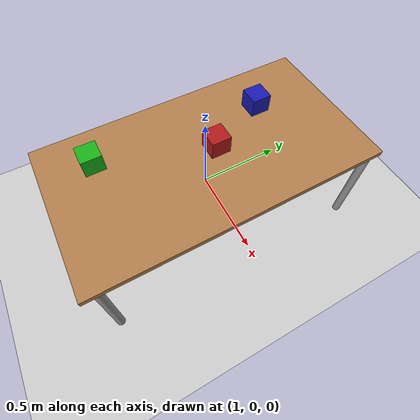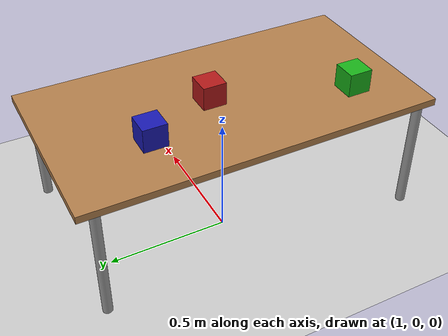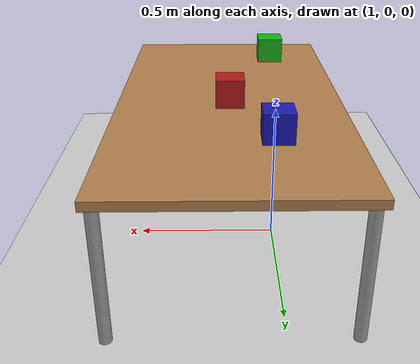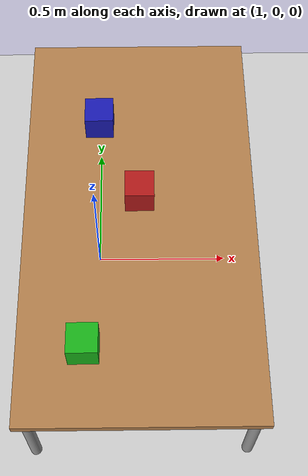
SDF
<sdf version='1.6'>
  <world name='default'>
    <light name='sun' type='directional'>
      <cast_shadows>1</cast_shadows>
      <pose frame=''>0 0 10 0 -0 0</pose>
      <diffuse>0.8 0.8 0.8 1</diffuse>
      <specular>0.2 0.2 0.2 1</specular>
      <attenuation>
        <range>1000</range>
        <constant>0.9</constant>
        <linear>0.01</linear>
        <quadratic>0.001</quadratic>
      </attenuation>
      <direction>-0.5 0.1 -0.9</direction>
    </light>
    <model name='ground_plane'>
      <static>1</static>
      <link name='link'>
        <collision name='collision'>
          <geometry>
            <plane>
              <normal>0 0 1</normal>
              <size>100 100</size>
            </plane>
          </geometry>
          <surface>
            <friction>
              <ode>
                <mu>100</mu>
                <mu2>50</mu2>
              </ode>
              <torsional>
                <ode/>
              </torsional>
            </friction>
            <contact>
              <ode/>
            </contact>
            <bounce/>
          </surface>
          <max_contacts>10</max_contacts>
        </collision>
        <visual name='visual'>
          <cast_shadows>0</cast_shadows>
          <geometry>
            <plane>
              <normal>0 0 1</normal>
              <size>100 100</size>
            </plane>
          </geometry>
          <material>
            <script>
              <uri>file://media/materials/scripts/gazebo.material</uri>
              <name>Gazebo/Grey</name>
            </script>
          </material>
        </visual>
        <self_collide>0</self_collide>
        <kinematic>0</kinematic>
      </link>
    </model>
    <gravity>0 0 -9.8</gravity>
    <magnetic_field>6e-06 2.3e-05 -4.2e-05</magnetic_field>
    <atmosphere type='adiabatic'/>
    <physics name='default_physics' default='0' type='ode'>
      <max_step_size>0.001</max_step_size>
      <real_time_factor>1</real_time_factor>
      <real_time_update_rate>1000</real_time_update_rate>
    </physics>
    <scene>
      <ambient>0.4 0.4 0.4 1</ambient>
      <background>0.7 0.7 0.7 1</background>
      <shadows>1</shadows>
    </scene>
    <spherical_coordinates>
      <surface_model>EARTH_WGS84</surface_model>
      <latitude_deg>0</latitude_deg>
      <longitude_deg>0</longitude_deg>
      <elevation>0</elevation>
      <heading_deg>0</heading_deg>
    </spherical_coordinates>
    <model name='low_table_rotate'>
      <link name='link'>
        <pose frame=''>0 0 0 0 0 -1.5708</pose>
        <inertial>
          <mass>1</mass>
          <pose frame=''>0 0 0 0 -0 0</pose>
          <inertia>
            <ixx>1</ixx>
            <ixy>0</ixy>
            <ixz>0</ixz>
            <iyy>1</iyy>
            <iyz>0</iyz>
            <izz>1</izz>
          </inertia>
        </inertial>
        <self_collide>0</self_collide>
        <kinematic>0</kinematic>
        <gravity>1</gravity>
        <visual name='visual1'>
          <pose frame=''>0 0 0.5 0 -0 0</pose>
          <geometry>
            <box>
              <size>1.5 0.8 0.03</size>
            </box>
          </geometry>
          <material>
            <script>
              <uri>file://media/materials/scripts/gazebo.material</uri>
              <name>Gazebo/Wood</name>
            </script>
            <shader type='pixel'>
              <normal_map>__default__</normal_map>
            </shader>
            <ambient>1 1 1 1</ambient>
            <diffuse>1 1 1 1</diffuse>
            <specular>0.2 0.2 0.2 1</specular>
            <emissive>0 0 0 1</emissive>
          </material>
          <transparency>0</transparency>
          <cast_shadows>1</cast_shadows>
        </visual>
        <visual name='front_right_leg'>
          <pose frame=''>0.68 -0.38 0.25 0 -0 0</pose>
          <geometry>
            <cylinder>
              <radius>0.02</radius>
              <length>0.5</length>
            </cylinder>
          </geometry>
          <material>
            <script>
              <uri>file://media/materials/scripts/gazebo.material</uri>
              <name>Gazebo/Grey</name>
            </script>
            <shader type='pixel'>
              <normal_map>__default__</normal_map>
            </shader>
            <ambient>0.3 0.3 0.3 1</ambient>
            <diffuse>0.7 0.7 0.7 1</diffuse>
            <specular>0.01 0.01 0.01 1</specular>
            <emissive>0 0 0 1</emissive>
          </material>
          <transparency>0</transparency>
          <cast_shadows>1</cast_shadows>
        </visual>
        <visual name='front_left_leg'>
          <pose frame=''>0.68 0.38 0.25 0 -0 0</pose>
          <geometry>
            <cylinder>
              <radius>0.02</radius>
              <length>0.5</length>
            </cylinder>
          </geometry>
          <material>
            <script>
              <uri>file://media/materials/scripts/gazebo.material</uri>
              <name>Gazebo/Grey</name>
            </script>
            <shader type='pixel'>
              <normal_map>__default__</normal_map>
            </shader>
            <ambient>0.3 0.3 0.3 1</ambient>
            <diffuse>0.7 0.7 0.7 1</diffuse>
            <specular>0.01 0.01 0.01 1</specular>
            <emissive>0 0 0 1</emissive>
          </material>
          <transparency>0</transparency>
          <cast_shadows>1</cast_shadows>
        </visual>
        <visual name='back_right_leg'>
          <pose frame=''>-0.68 -0.38 0.25 0 -0 0</pose>
          <geometry>
            <cylinder>
              <radius>0.02</radius>
              <length>0.5</length>
            </cylinder>
          </geometry>
          <material>
            <script>
              <uri>file://media/materials/scripts/gazebo.material</uri>
              <name>Gazebo/Grey</name>
            </script>
            <shader type='pixel'>
              <normal_map>__default__</normal_map>
            </shader>
            <ambient>0.3 0.3 0.3 1</ambient>
            <diffuse>0.7 0.7 0.7 1</diffuse>
            <specular>0.01 0.01 0.01 1</specular>
            <emissive>0 0 0 1</emissive>
          </material>
          <transparency>0</transparency>
          <cast_shadows>1</cast_shadows>
        </visual>
        <visual name='back_left_leg'>
          <pose frame=''>-0.68 0.38 0.25 0 -0 0</pose>
          <geometry>
            <cylinder>
              <radius>0.02</radius>
              <length>0.5</length>
            </cylinder>
          </geometry>
          <material>
            <script>
              <uri>file://media/materials/scripts/gazebo.material</uri>
              <name>Gazebo/Grey</name>
            </script>
            <shader type='pixel'>
              <normal_map>__default__</normal_map>
            </shader>
            <ambient>0.3 0.3 0.3 1</ambient>
            <diffuse>0.7 0.7 0.7 1</diffuse>
            <specular>0.01 0.01 0.01 1</specular>
            <emissive>0 0 0 1</emissive>
          </material>
          <transparency>0</transparency>
          <cast_shadows>1</cast_shadows>
        </visual>
        <collision name='surface'>
          <laser_retro>0</laser_retro>
          <max_contacts>10</max_contacts>
          <pose frame=''>0 0 0.5 0 -0 0</pose>
          <geometry>
            <box>
              <size>1.5 0.8 0.03</size>
            </box>
          </geometry>
          <surface>
            <friction>
              <ode>
                <mu>0.6</mu>
                <mu2>0.6</mu2>
                <fdir1>0 0 0</fdir1>
                <slip1>0</slip1>
                <slip2>0</slip2>
              </ode>
              <torsional>
                <coefficient>1</coefficient>
                <patch_radius>0</patch_radius>
                <surface_radius>0</surface_radius>
                <use_patch_radius>1</use_patch_radius>
                <ode>
                  <slip>0</slip>
                </ode>
              </torsional>
            </friction>
            <bounce>
              <restitution_coefficient>0</restitution_coefficient>
              <threshold>1e+06</threshold>
            </bounce>
            <contact>
              <collide_without_contact>0</collide_without_contact>
              <collide_without_contact_bitmask>1</collide_without_contact_bitmask>
              <collide_bitmask>1</collide_bitmask>
              <ode>
                <soft_cfm>0</soft_cfm>
                <soft_erp>0.2</soft_erp>
                <kp>1e+13</kp>
                <kd>1</kd>
                <max_vel>0.01</max_vel>
                <min_depth>0</min_depth>
              </ode>
              <bullet>
                <split_impulse>1</split_impulse>
                <split_impulse_penetration_threshold>-0.01</split_impulse_penetration_threshold>
                <soft_cfm>0</soft_cfm>
                <soft_erp>0.2</soft_erp>
                <kp>1e+13</kp>
                <kd>1</kd>
              </bullet>
            </contact>
          </surface>
        </collision>
        <collision name='front_left_leg'>
          <laser_retro>0</laser_retro>
          <max_contacts>10</max_contacts>
          <pose frame=''>0.68 0.38 0.25 0 -0 0</pose>
          <geometry>
            <cylinder>
              <radius>0.02</radius>
              <length>0.5</length>
            </cylinder>
          </geometry>
          <surface>
            <friction>
              <ode>
                <mu>1</mu>
                <mu2>1</mu2>
                <fdir1>0 0 0</fdir1>
                <slip1>0</slip1>
                <slip2>0</slip2>
              </ode>
              <torsional>
                <coefficient>1</coefficient>
                <patch_radius>0</patch_radius>
                <surface_radius>0</surface_radius>
                <use_patch_radius>1</use_patch_radius>
                <ode>
                  <slip>0</slip>
                </ode>
              </torsional>
            </friction>
            <bounce>
              <restitution_coefficient>0</restitution_coefficient>
              <threshold>1e+06</threshold>
            </bounce>
            <contact>
              <collide_without_contact>0</collide_without_contact>
              <collide_without_contact_bitmask>1</collide_without_contact_bitmask>
              <collide_bitmask>1</collide_bitmask>
              <ode>
                <soft_cfm>0</soft_cfm>
                <soft_erp>0.2</soft_erp>
                <kp>1e+13</kp>
                <kd>1</kd>
                <max_vel>0.01</max_vel>
                <min_depth>0</min_depth>
              </ode>
              <bullet>
                <split_impulse>1</split_impulse>
                <split_impulse_penetration_threshold>-0.01</split_impulse_penetration_threshold>
                <soft_cfm>0</soft_cfm>
                <soft_erp>0.2</soft_erp>
                <kp>1e+13</kp>
                <kd>1</kd>
              </bullet>
            </contact>
          </surface>
        </collision>
        <collision name='back_right_leg'>
          <laser_retro>0</laser_retro>
          <max_contacts>10</max_contacts>
          <pose frame=''>-0.68 -0.38 0.25 0 -0 0</pose>
          <geometry>
            <cylinder>
              <radius>0.02</radius>
              <length>0.5</length>
            </cylinder>
          </geometry>
          <surface>
            <friction>
              <ode>
                <mu>1</mu>
                <mu2>1</mu2>
                <fdir1>0 0 0</fdir1>
                <slip1>0</slip1>
                <slip2>0</slip2>
              </ode>
              <torsional>
                <coefficient>1</coefficient>
                <patch_radius>0</patch_radius>
                <surface_radius>0</surface_radius>
                <use_patch_radius>1</use_patch_radius>
                <ode>
                  <slip>0</slip>
                </ode>
              </torsional>
            </friction>
            <bounce>
              <restitution_coefficient>0</restitution_coefficient>
              <threshold>1e+06</threshold>
            </bounce>
            <contact>
              <collide_without_contact>0</collide_without_contact>
              <collide_without_contact_bitmask>1</collide_without_contact_bitmask>
              <collide_bitmask>1</collide_bitmask>
              <ode>
                <soft_cfm>0</soft_cfm>
                <soft_erp>0.2</soft_erp>
                <kp>1e+13</kp>
                <kd>1</kd>
                <max_vel>0.01</max_vel>
                <min_depth>0</min_depth>
              </ode>
              <bullet>
                <split_impulse>1</split_impulse>
                <split_impulse_penetration_threshold>-0.01</split_impulse_penetration_threshold>
                <soft_cfm>0</soft_cfm>
                <soft_erp>0.2</soft_erp>
                <kp>1e+13</kp>
                <kd>1</kd>
              </bullet>
            </contact>
          </surface>
        </collision>
        <collision name='front_right_leg'>
          <laser_retro>0</laser_retro>
          <max_contacts>10</max_contacts>
          <pose frame=''>0.68 -0.38 0.25 0 -0 0</pose>
          <geometry>
            <cylinder>
              <radius>0.02</radius>
              <length>0.5</length>
            </cylinder>
          </geometry>
          <surface>
            <friction>
              <ode>
                <mu>1</mu>
                <mu2>1</mu2>
                <fdir1>0 0 0</fdir1>
                <slip1>0</slip1>
                <slip2>0</slip2>
              </ode>
              <torsional>
                <coefficient>1</coefficient>
                <patch_radius>0</patch_radius>
                <surface_radius>0</surface_radius>
                <use_patch_radius>1</use_patch_radius>
                <ode>
                  <slip>0</slip>
                </ode>
              </torsional>
            </friction>
            <bounce>
              <restitution_coefficient>0</restitution_coefficient>
              <threshold>1e+06</threshold>
            </bounce>
            <contact>
              <collide_without_contact>0</collide_without_contact>
              <collide_without_contact_bitmask>1</collide_without_contact_bitmask>
              <collide_bitmask>1</collide_bitmask>
              <ode>
                <soft_cfm>0</soft_cfm>
                <soft_erp>0.2</soft_erp>
                <kp>1e+13</kp>
                <kd>1</kd>
                <max_vel>0.01</max_vel>
                <min_depth>0</min_depth>
              </ode>
              <bullet>
                <split_impulse>1</split_impulse>
                <split_impulse_penetration_threshold>-0.01</split_impulse_penetration_threshold>
                <soft_cfm>0</soft_cfm>
                <soft_erp>0.2</soft_erp>
                <kp>1e+13</kp>
                <kd>1</kd>
              </bullet>
            </contact>
          </surface>
        </collision>
        <collision name='back_left_leg'>
          <laser_retro>0</laser_retro>
          <max_contacts>10</max_contacts>
          <pose frame=''>-0.68 0.38 0.25 0 -0 0</pose>
          <geometry>
            <cylinder>
              <radius>0.02</radius>
              <length>0.5</length>
            </cylinder>
          </geometry>
          <surface>
            <friction>
              <ode>
                <mu>1</mu>
                <mu2>1</mu2>
                <fdir1>0 0 0</fdir1>
                <slip1>0</slip1>
                <slip2>0</slip2>
              </ode>
              <torsional>
                <coefficient>1</coefficient>
                <patch_radius>0</patch_radius>
                <surface_radius>0</surface_radius>
                <use_patch_radius>1</use_patch_radius>
                <ode>
                  <slip>0</slip>
                </ode>
              </torsional>
            </friction>
            <bounce>
              <restitution_coefficient>0</restitution_coefficient>
              <threshold>1e+06</threshold>
            </bounce>
            <contact>
              <collide_without_contact>0</collide_without_contact>
              <collide_without_contact_bitmask>1</collide_without_contact_bitmask>
              <collide_bitmask>1</collide_bitmask>
              <ode>
                <soft_cfm>0</soft_cfm>
                <soft_erp>0.2</soft_erp>
                <kp>1e+13</kp>
                <kd>1</kd>
                <max_vel>0.01</max_vel>
                <min_depth>0</min_depth>
              </ode>
              <bullet>
                <split_impulse>1</split_impulse>
                <split_impulse_penetration_threshold>-0.01</split_impulse_penetration_threshold>
                <soft_cfm>0</soft_cfm>
                <soft_erp>0.2</soft_erp>
                <kp>1e+13</kp>
                <kd>1</kd>
              </bullet>
            </contact>
          </surface>
        </collision>
      </link>
      <static>1</static>
      <allow_auto_disable>1</allow_auto_disable>
      <pose frame=''>1.16194 -0.085644 0 0 -0 0</pose>
    </model>
    <model name='box_red'>
      <link name='link_1'>
        <pose frame=''>-0 -0 -0 0 -0 0</pose>
        <inertial>
          <mass>1</mass>
          <inertia>
            <ixx>0.00166666</ixx>
            <ixy>0</ixy>
            <ixz>0</ixz>
            <iyy>0.00166666</iyy>
            <iyz>0</iyz>
            <izz>0.00166666</izz>
          </inertia>
          <pose frame=''>0 0 0 0 -0 0</pose>
        </inertial>
        <gravity>1</gravity>
        <self_collide>0</self_collide>
        <kinematic>0</kinematic>
        <visual name='visual'>
          <pose frame=''>0 0 0 0 -0 0</pose>
          <geometry>
            <box>
              <size>0.1 0.1 0.1</size>
            </box>
          </geometry>
          <material>
            <lighting>1</lighting>
            <script>
              <uri>file://media/materials/scripts/gazebo.material</uri>
              <name>Gazebo/Grey</name>
            </script>
            <shader type='pixel'>
              <normal_map>__default__</normal_map>
            </shader>
            <ambient>0.7 0.1 0.1 1</ambient>
            <diffuse>0.7 0.7 0.7 1</diffuse>
            <specular>0.01 0.01 0.01 1</specular>
            <emissive>0 0 0 1</emissive>
          </material>
          <transparency>0</transparency>
          <cast_shadows>1</cast_shadows>
        </visual>
        <collision name='collision'>
          <laser_retro>0</laser_retro>
          <max_contacts>10</max_contacts>
          <pose frame=''>0 0 0 0 -0 0</pose>
          <geometry>
            <box>
              <size>0.1 0.1 0.1</size>
            </box>
          </geometry>
          <surface>
            <friction>
              <ode>
                <mu>1</mu>
                <mu2>1</mu2>
                <fdir1>0 0 0</fdir1>
                <slip1>0</slip1>
                <slip2>0</slip2>
              </ode>
              <torsional>
                <coefficient>1</coefficient>
                <patch_radius>0</patch_radius>
                <surface_radius>0</surface_radius>
                <use_patch_radius>1</use_patch_radius>
                <ode>
                  <slip>0</slip>
                </ode>
              </torsional>
            </friction>
            <bounce>
              <restitution_coefficient>0</restitution_coefficient>
              <threshold>1e+06</threshold>
            </bounce>
            <contact>
              <collide_without_contact>0</collide_without_contact>
              <collide_without_contact_bitmask>1</collide_without_contact_bitmask>
              <collide_bitmask>1</collide_bitmask>
              <ode>
                <soft_cfm>0</soft_cfm>
                <soft_erp>0.2</soft_erp>
                <kp>1e+13</kp>
                <kd>1</kd>
                <max_vel>0.01</max_vel>
                <min_depth>0</min_depth>
              </ode>
              <bullet>
                <split_impulse>1</split_impulse>
                <split_impulse_penetration_threshold>-0.01</split_impulse_penetration_threshold>
                <soft_cfm>0</soft_cfm>
                <soft_erp>0.2</soft_erp>
                <kp>1e+13</kp>
                <kd>1</kd>
              </bullet>
            </contact>
          </surface>
        </collision>
      </link>
      <static>0</static>
      <allow_auto_disable>1</allow_auto_disable>
      <pose frame=''>1.16175 -0.026455 0.565 0 0 0</pose>
    </model>
    <model name='box_green'>
      <link name='link_2'>
        <pose frame=''>0 0 0 0 -0 0</pose>
        <inertial>
          <mass>1</mass>
          <inertia>
            <ixx>0.00166666</ixx>
            <ixy>0</ixy>
            <ixz>0</ixz>
            <iyy>0.00166666</iyy>
            <iyz>0</iyz>
            <izz>0.00166666</izz>
          </inertia>
          <pose frame=''>0 0 0 0 -0 0</pose>
        </inertial>
        <gravity>1</gravity>
        <self_collide>0</self_collide>
        <kinematic>0</kinematic>
        <visual name='visual'>
          <pose frame=''>0 0 0 0 -0 0</pose>
          <geometry>
            <box>
              <size>0.1 0.1 0.1</size>
            </box>
          </geometry>
          <material>
            <lighting>1</lighting>
            <script>
              <uri>file://media/materials/scripts/gazebo.material</uri>
              <name>Gazebo/Grey</name>
            </script>
            <shader type='pixel'>
              <normal_map>__default__</normal_map>
            </shader>
            <ambient>0.1 0.7 0.1 1</ambient>
            <diffuse>0.7 0.7 0.7 1</diffuse>
            <specular>0.01 0.01 0.01 1</specular>
            <emissive>0 0 0 1</emissive>
          </material>
          <transparency>0</transparency>
          <cast_shadows>1</cast_shadows>
        </visual>
        <collision name='collision'>
          <laser_retro>0</laser_retro>
          <max_contacts>10</max_contacts>
          <pose frame=''>0 0 0 0 -0 0</pose>
          <geometry>
            <box>
              <size>0.1 0.1 0.1</size>
            </box>
          </geometry>
          <surface>
            <friction>
              <ode>
                <mu>1</mu>
                <mu2>1</mu2>
                <fdir1>0 0 0</fdir1>
                <slip1>0</slip1>
                <slip2>0</slip2>
              </ode>
              <torsional>
                <coefficient>1</coefficient>
                <patch_radius>0</patch_radius>
                <surface_radius>0</surface_radius>
                <use_patch_radius>1</use_patch_radius>
                <ode>
                  <slip>0</slip>
                </ode>
              </torsional>
            </friction>
            <bounce>
              <restitution_coefficient>0</restitution_coefficient>
              <threshold>1e+06</threshold>
            </bounce>
            <contact>
              <collide_without_contact>0</collide_without_contact>
              <collide_without_contact_bitmask>1</collide_without_contact_bitmask>
              <collide_bitmask>1</collide_bitmask>
              <ode>
                <soft_cfm>0</soft_cfm>
                <soft_erp>0.2</soft_erp>
                <kp>1e+13</kp>
                <kd>1</kd>
                <max_vel>0.01</max_vel>
                <min_depth>0</min_depth>
              </ode>
              <bullet>
                <split_impulse>1</split_impulse>
                <split_impulse_penetration_threshold>-0.01</split_impulse_penetration_threshold>
                <soft_cfm>0</soft_cfm>
                <soft_erp>0.2</soft_erp>
                <kp>1e+13</kp>
                <kd>1</kd>
              </bullet>
            </contact>
          </surface>
        </collision>
      </link>
      <static>0</static>
      <allow_auto_disable>1</allow_auto_disable>
      <pose frame=''>0.980338 -0.583138 0.565 0 -0 0</pose>
    </model>
    <model name='box_blue'>
      <link name='link_3'>
        <pose frame=''>0 -0 0 0 -0 0</pose>
        <inertial>
          <mass>1</mass>
          <inertia>
            <ixx>0.00166666</ixx>
            <ixy>0</ixy>
            <ixz>0</ixz>
            <iyy>0.00166666</iyy>
            <iyz>0</iyz>
            <izz>0.00166666</izz>
          </inertia>
          <pose frame=''>0 0 0 0 -0 0</pose>
        </inertial>
        <gravity>1</gravity>
        <self_collide>0</self_collide>
        <kinematic>0</kinematic>
        <visual name='visual'>
          <pose frame=''>0 0 0 0 -0 0</pose>
          <geometry>
            <box>
              <size>0.1 0.1 0.1</size>
            </box>
          </geometry>
          <material>
            <lighting>1</lighting>
            <script>
              <uri>file://media/materials/scripts/gazebo.material</uri>
              <name>Gazebo/Grey</name>
            </script>
            <shader type='pixel'>
              <normal_map>__default__</normal_map>
            </shader>
            <ambient>0.1 0.1 0.7 1</ambient>
            <diffuse>0.7 0.7 0.7 1</diffuse>
            <specular>0.01 0.01 0.01 1</specular>
            <emissive>0 0 0 1</emissive>
          </material>
          <transparency>0</transparency>
          <cast_shadows>1</cast_shadows>
        </visual>
        <collision name='collision'>
          <laser_retro>0</laser_retro>
          <max_contacts>10</max_contacts>
          <pose frame=''>0 0 0 0 -0 0</pose>
          <geometry>
            <box>
              <size>0.1 0.1 0.1</size>
            </box>
          </geometry>
          <surface>
            <friction>
              <ode>
                <mu>1</mu>
                <mu2>1</mu2>
                <fdir1>0 0 0</fdir1>
                <slip1>0</slip1>
                <slip2>0</slip2>
              </ode>
              <torsional>
                <coefficient>1</coefficient>
                <patch_radius>0</patch_radius>
                <surface_radius>0</surface_radius>
                <use_patch_radius>1</use_patch_radius>
                <ode>
                  <slip>0</slip>
                </ode>
              </torsional>
            </friction>
            <bounce>
              <restitution_coefficient>0</restitution_coefficient>
              <threshold>1e+06</threshold>
            </bounce>
            <contact>
              <collide_without_contact>0</collide_without_contact>
              <collide_without_contact_bitmask>1</collide_without_contact_bitmask>
              <collide_bitmask>1</collide_bitmask>
              <ode>
                <soft_cfm>0</soft_cfm>
                <soft_erp>0.2</soft_erp>
                <kp>1e+13</kp>
                <kd>1</kd>
                <max_vel>0.01</max_vel>
                <min_depth>0</min_depth>
              </ode>
              <bullet>
                <split_impulse>1</split_impulse>
                <split_impulse_penetration_threshold>-0.01</split_impulse_penetration_threshold>
                <soft_cfm>0</soft_cfm>
                <soft_erp>0.2</soft_erp>
                <kp>1e+13</kp>
                <kd>1</kd>
              </bullet>
            </contact>
          </surface>
        </collision>
      </link>
      <static>0</static>
      <allow_auto_disable>1</allow_auto_disable>
      <pose frame=''>1.02026 0.284976 0.565 0 -0 0</pose>
    </model>
    <gui fullscreen='0'>
      <camera name='user_camera'>
        <pose frame=''>-4.43006 -2.99463 2.42854 0 0.366021 0.490777</pose>
        <view_controller>orbit</view_controller>
        <projection_type>perspective</projection_type>
      </camera>
    </gui>
  </world>
</sdf>
